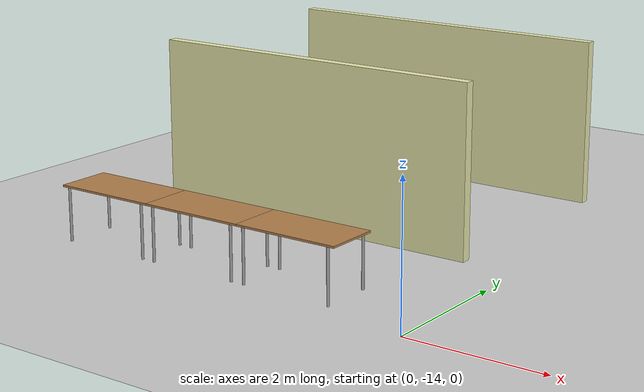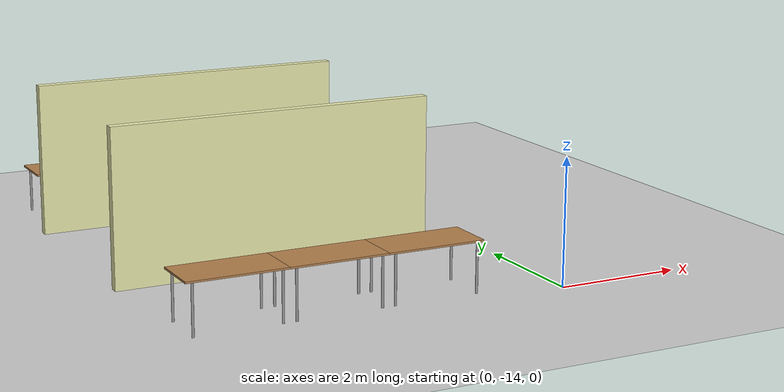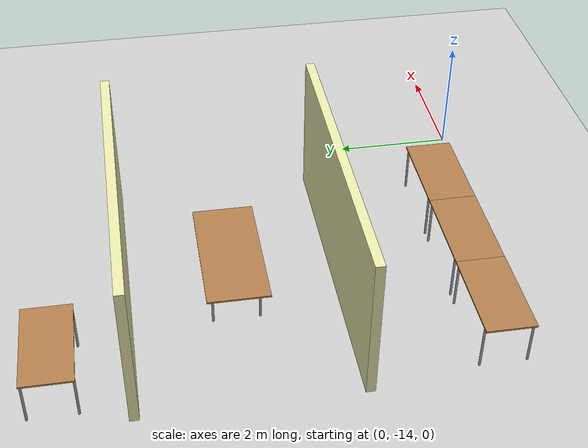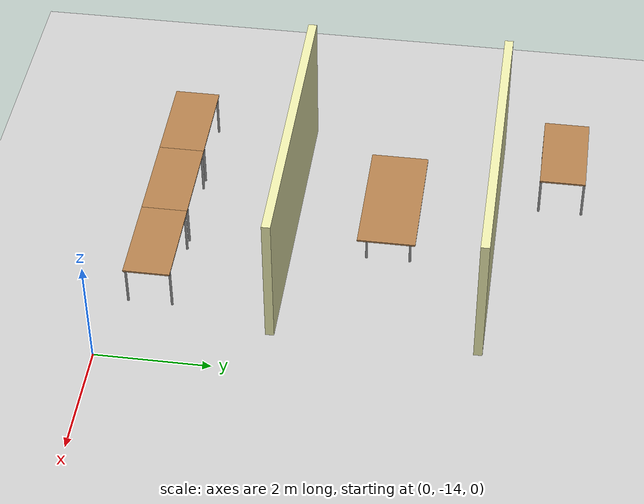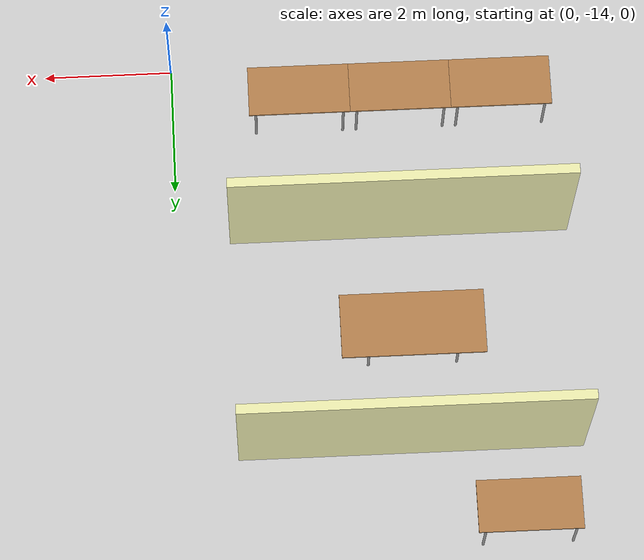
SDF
<sdf version="1.6">
 <world name="default">
  <model name="ground_plane">
   <static>1</static>
   <link name="link">
    <collision name="collision">
     <geometry><plane><normal>0 0 1</normal><size>100 100</size></plane></geometry>
     <surface><friction><ode><mu>100</mu><mu2>50</mu2></ode></friction></surface>
    </collision>
    <visual name="visual">
     <cast_shadows>0</cast_shadows>
     <geometry><plane><normal>0 0 1</normal><size>100 100</size></plane></geometry>
     <material>
      <script><uri>file://media/materials/scripts/gazebo.material</uri><name>Gazebo/Grey</name></script>
     </material>
    </visual>
   </link>
  </model>
  <model name="Building">
   <link name="Wall_53">
    <collision name="Wall_53_Collision">
     <geometry><box><size>5.25 0.15 2.5</size></box></geometry>
     <pose>0 0 1.25 0 -0 0</pose>
    </collision>
    <visual name="Wall_53_Visual">
     <pose>0 0 1.25 0 -0 0</pose>
     <geometry><box><size>5.25 0.15 2.5</size></box></geometry>
     <material>
      <script><uri>file://media/materials/scripts/gazebo.material</uri><name>Gazebo/Grey</name></script>
      <ambient>0.92 0.92 0.68 1</ambient>
     </material>
     <meta><layer>0</layer></meta>
    </visual>
    <pose>-3.45 -7.66361 0 0 -0 0</pose>
   </link>
   <link name="Wall_55">
    <collision name="Wall_55_Collision">
     <geometry><box><size>5.25 0.15 2.5</size></box></geometry>
     <pose>0 0 1.25 0 -0 0</pose>
    </collision>
    <visual name="Wall_55_Visual">
     <pose>0 0 1.25 0 -0 0</pose>
     <geometry><box><size>5.25 0.15 2.5</size></box></geometry>
     <material>
      <script><uri>file://media/materials/scripts/gazebo.material</uri><name>Gazebo/Grey</name></script>
      <ambient>0.92 0.92 0.68 1</ambient>
     </material>
     <meta><layer>0</layer></meta>
    </visual>
    <pose>-3.45 -11.1636 0 0 -0 0</pose>
   </link>
   <static>1</static>
  </model>
  <model name="tablealt_0_clone_30">
   <link name="link">
    <inertial>
     <mass>1</mass>
     <inertia><ixx>1</ixx><ixy>0</ixy><ixz>0</ixz><iyy>1</iyy><iyz>0</iyz><izz>1</izz></inertia>
    </inertial>
    <visual name="back_right_leg">
     <pose>-0.68 -0.38 0.4 0 -0 0</pose>
     <geometry><cylinder><radius>0.02</radius><length>0.8</length></cylinder></geometry>
     <material>
      <script><uri>file://media/materials/scripts/gazebo.material</uri><name>Gazebo/Grey</name></script>
      <shader type="pixel"><normal_map>__default__</normal_map></shader>
      <ambient>0.3 0.3 0.3 1</ambient>
      <diffuse>0.7 0.7 0.7 1</diffuse>
      <specular>0.01 0.01 0.01 1</specular>
      <emissive>0 0 0 1</emissive>
     </material>
    </visual>
    <visual name="back_left_leg">
     <pose>-0.68 0.38 0.4 0 -0 0</pose>
     <geometry><cylinder><radius>0.02</radius><length>0.8</length></cylinder></geometry>
     <material>
      <script><uri>file://media/materials/scripts/gazebo.material</uri><name>Gazebo/Grey</name></script>
      <shader type="pixel"><normal_map>__default__</normal_map></shader>
      <ambient>0.3 0.3 0.3 1</ambient>
      <diffuse>0.7 0.7 0.7 1</diffuse>
      <specular>0.01 0.01 0.01 1</specular>
      <emissive>0 0 0 1</emissive>
     </material>
    </visual>
    <visual name="visual1">
     <pose>0 0 0.8 0 -0 0</pose>
     <geometry><box><size>1.57 0.8 0.03</size></box></geometry>
     <material>
      <script><uri>file://media/materials/scripts/gazebo.material</uri><name>Gazebo/Wood</name></script>
      <shader type="pixel"><normal_map>__default__</normal_map></shader>
      <ambient>0.92 0.92 0.68 1</ambient>
      <diffuse>1 1 1 1</diffuse>
      <specular>0.2 0.2 0.2 1</specular>
      <emissive>0 0 0 1</emissive>
     </material>
    </visual>
    <visual name="front_left_leg">
     <pose>0.68 0.38 0.4 0 -0 0</pose>
     <geometry><cylinder><radius>0.02</radius><length>0.8</length></cylinder></geometry>
     <material>
      <script><uri>file://media/materials/scripts/gazebo.material</uri><name>Gazebo/Grey</name></script>
      <shader type="pixel"><normal_map>__default__</normal_map></shader>
      <ambient>0.3 0.3 0.3 1</ambient>
      <diffuse>0.7 0.7 0.7 1</diffuse>
      <specular>0.01 0.01 0.01 1</specular>
      <emissive>0 0 0 1</emissive>
     </material>
    </visual>
    <visual name="front_right_leg">
     <pose>0.68 -0.38 0.4 0 -0 0</pose>
     <geometry><cylinder><radius>0.02</radius><length>0.8</length></cylinder></geometry>
     <material>
      <script><uri>file://media/materials/scripts/gazebo.material</uri><name>Gazebo/Grey</name></script>
      <shader type="pixel"><normal_map>__default__</normal_map></shader>
      <ambient>0.3 0.3 0.3 1</ambient>
      <diffuse>0.7 0.7 0.7 1</diffuse>
      <specular>0.01 0.01 0.01 1</specular>
      <emissive>0 0 0 1</emissive>
     </material>
    </visual>
    <collision name="front_right_leg">
     <pose>0.68 -0.38 0.4 0 -0 0</pose>
     <geometry><cylinder><radius>0.02</radius><length>0.8</length></cylinder></geometry>
     <surface>
      <friction>
       <ode><mu>1</mu><mu2>1</mu2><fdir1>0 0 0</fdir1><slip1>0</slip1><slip2>0</slip2></ode>
       <torsional>
        <coefficient>1</coefficient>
        <patch_radius>0</patch_radius>
        <surface_radius>0</surface_radius>
        <use_patch_radius>1</use_patch_radius>
        <ode><slip>0</slip></ode>
       </torsional>
      </friction>
      <bounce><restitution_coefficient>0</restitution_coefficient><threshold>1e+06</threshold></bounce>
      <contact>
       <collide_without_contact>0</collide_without_contact>
       <collide_without_contact_bitmask>1</collide_without_contact_bitmask>
       <collide_bitmask>1</collide_bitmask>
       <ode>
        <soft_cfm>0</soft_cfm>
        <soft_erp>0.2</soft_erp>
        <kp>1e+13</kp>
        <kd>1</kd>
        <max_vel>0.01</max_vel>
        <min_depth>0</min_depth>
       </ode>
       <bullet>
        <split_impulse>1</split_impulse>
        <split_impulse_penetration_threshold>-0.01</split_impulse_penetration_threshold>
        <soft_cfm>0</soft_cfm>
        <soft_erp>0.2</soft_erp>
        <kp>1e+13</kp>
        <kd>1</kd>
       </bullet>
      </contact>
     </surface>
    </collision>
    <collision name="surface">
     <pose>0 0 0.8 0 -0 0</pose>
     <geometry><box><size>1.5 0.8 0.03</size></box></geometry>
     <surface>
      <friction>
       <ode><mu>0.6</mu><mu2>0.6</mu2><fdir1>0 0 0</fdir1><slip1>0</slip1><slip2>0</slip2></ode>
       <torsional>
        <coefficient>1</coefficient>
        <patch_radius>0</patch_radius>
        <surface_radius>0</surface_radius>
        <use_patch_radius>1</use_patch_radius>
        <ode><slip>0</slip></ode>
       </torsional>
      </friction>
      <bounce><restitution_coefficient>0</restitution_coefficient><threshold>1e+06</threshold></bounce>
      <contact>
       <collide_without_contact>0</collide_without_contact>
       <collide_without_contact_bitmask>1</collide_without_contact_bitmask>
       <collide_bitmask>1</collide_bitmask>
       <ode>
        <soft_cfm>0</soft_cfm>
        <soft_erp>0.2</soft_erp>
        <kp>1e+13</kp>
        <kd>1</kd>
        <max_vel>0.01</max_vel>
        <min_depth>0</min_depth>
       </ode>
       <bullet>
        <split_impulse>1</split_impulse>
        <split_impulse_penetration_threshold>-0.01</split_impulse_penetration_threshold>
        <soft_cfm>0</soft_cfm>
        <soft_erp>0.2</soft_erp>
        <kp>1e+13</kp>
        <kd>1</kd>
       </bullet>
      </contact>
     </surface>
    </collision>
    <collision name="front_left_leg">
     <pose>0.68 0.38 0.4 0 -0 0</pose>
     <geometry><cylinder><radius>0.02</radius><length>0.8</length></cylinder></geometry>
     <surface>
      <friction>
       <ode><mu>1</mu><mu2>1</mu2><fdir1>0 0 0</fdir1><slip1>0</slip1><slip2>0</slip2></ode>
       <torsional>
        <coefficient>1</coefficient>
        <patch_radius>0</patch_radius>
        <surface_radius>0</surface_radius>
        <use_patch_radius>1</use_patch_radius>
        <ode><slip>0</slip></ode>
       </torsional>
      </friction>
      <bounce><restitution_coefficient>0</restitution_coefficient><threshold>1e+06</threshold></bounce>
      <contact>
       <collide_without_contact>0</collide_without_contact>
       <collide_without_contact_bitmask>1</collide_without_contact_bitmask>
       <collide_bitmask>1</collide_bitmask>
       <ode>
        <soft_cfm>0</soft_cfm>
        <soft_erp>0.2</soft_erp>
        <kp>1e+13</kp>
        <kd>1</kd>
        <max_vel>0.01</max_vel>
        <min_depth>0</min_depth>
       </ode>
       <bullet>
        <split_impulse>1</split_impulse>
        <split_impulse_penetration_threshold>-0.01</split_impulse_penetration_threshold>
        <soft_cfm>0</soft_cfm>
        <soft_erp>0.2</soft_erp>
        <kp>1e+13</kp>
        <kd>1</kd>
       </bullet>
      </contact>
     </surface>
    </collision>
    <collision name="back_left_leg">
     <pose>-0.68 0.38 0.4 0 -0 0</pose>
     <geometry><cylinder><radius>0.02</radius><length>0.8</length></cylinder></geometry>
     <surface>
      <friction>
       <ode><mu>1</mu><mu2>1</mu2><fdir1>0 0 0</fdir1><slip1>0</slip1><slip2>0</slip2></ode>
       <torsional>
        <coefficient>1</coefficient>
        <patch_radius>0</patch_radius>
        <surface_radius>0</surface_radius>
        <use_patch_radius>1</use_patch_radius>
        <ode><slip>0</slip></ode>
       </torsional>
      </friction>
      <bounce><restitution_coefficient>0</restitution_coefficient><threshold>1e+06</threshold></bounce>
      <contact>
       <collide_without_contact>0</collide_without_contact>
       <collide_without_contact_bitmask>1</collide_without_contact_bitmask>
       <collide_bitmask>1</collide_bitmask>
       <ode>
        <soft_cfm>0</soft_cfm>
        <soft_erp>0.2</soft_erp>
        <kp>1e+13</kp>
        <kd>1</kd>
        <max_vel>0.01</max_vel>
        <min_depth>0</min_depth>
       </ode>
       <bullet>
        <split_impulse>1</split_impulse>
        <split_impulse_penetration_threshold>-0.01</split_impulse_penetration_threshold>
        <soft_cfm>0</soft_cfm>
        <soft_erp>0.2</soft_erp>
        <kp>1e+13</kp>
        <kd>1</kd>
       </bullet>
      </contact>
     </surface>
    </collision>
    <collision name="back_right_leg">
     <pose>-0.68 -0.38 0.4 0 -0 0</pose>
     <geometry><cylinder><radius>0.02</radius><length>0.8</length></cylinder></geometry>
     <surface>
      <friction>
       <ode><mu>1</mu><mu2>1</mu2><fdir1>0 0 0</fdir1><slip1>0</slip1><slip2>0</slip2></ode>
       <torsional>
        <coefficient>1</coefficient>
        <patch_radius>0</patch_radius>
        <surface_radius>0</surface_radius>
        <use_patch_radius>1</use_patch_radius>
        <ode><slip>0</slip></ode>
       </torsional>
      </friction>
      <bounce><restitution_coefficient>0</restitution_coefficient><threshold>1e+06</threshold></bounce>
      <contact>
       <collide_without_contact>0</collide_without_contact>
       <collide_without_contact_bitmask>1</collide_without_contact_bitmask>
       <collide_bitmask>1</collide_bitmask>
       <ode>
        <soft_cfm>0</soft_cfm>
        <soft_erp>0.2</soft_erp>
        <kp>1e+13</kp>
        <kd>1</kd>
        <max_vel>0.01</max_vel>
        <min_depth>0</min_depth>
       </ode>
       <bullet>
        <split_impulse>1</split_impulse>
        <split_impulse_penetration_threshold>-0.01</split_impulse_penetration_threshold>
        <soft_cfm>0</soft_cfm>
        <soft_erp>0.2</soft_erp>
        <kp>1e+13</kp>
        <kd>1</kd>
       </bullet>
      </contact>
     </surface>
    </collision>
   </link>
   <static>1</static>
   <pose>-5.13 -6.5 0 0 -0 0</pose>
  </model>
  <model name="tablealt_0_clone_36">
   <link name="link">
    <inertial>
     <mass>1</mass>
     <inertia><ixx>1</ixx><ixy>0</ixy><ixz>0</ixz><iyy>1</iyy><iyz>0</iyz><izz>1</izz></inertia>
    </inertial>
    <visual name="back_right_leg">
     <pose>-0.68 -0.38 0.4 0 -0 0</pose>
     <geometry><cylinder><radius>0.02</radius><length>0.8</length></cylinder></geometry>
     <material>
      <script><uri>file://media/materials/scripts/gazebo.material</uri><name>Gazebo/Grey</name></script>
      <shader type="pixel"><normal_map>__default__</normal_map></shader>
      <ambient>0.3 0.3 0.3 1</ambient>
      <diffuse>0.7 0.7 0.7 1</diffuse>
      <specular>0.01 0.01 0.01 1</specular>
      <emissive>0 0 0 1</emissive>
     </material>
    </visual>
    <visual name="back_left_leg">
     <pose>-0.68 0.38 0.4 0 -0 0</pose>
     <geometry><cylinder><radius>0.02</radius><length>0.8</length></cylinder></geometry>
     <material>
      <script><uri>file://media/materials/scripts/gazebo.material</uri><name>Gazebo/Grey</name></script>
      <shader type="pixel"><normal_map>__default__</normal_map></shader>
      <ambient>0.3 0.3 0.3 1</ambient>
      <diffuse>0.7 0.7 0.7 1</diffuse>
      <specular>0.01 0.01 0.01 1</specular>
      <emissive>0 0 0 1</emissive>
     </material>
    </visual>
    <visual name="visual1">
     <pose>0 0 0.8 0 -0 0</pose>
     <geometry><box><size>1.57 0.8 0.03</size></box></geometry>
     <material>
      <script><uri>file://media/materials/scripts/gazebo.material</uri><name>Gazebo/Wood</name></script>
      <shader type="pixel"><normal_map>__default__</normal_map></shader>
      <ambient>0.92 0.92 0.68 1</ambient>
      <diffuse>1 1 1 1</diffuse>
      <specular>0.2 0.2 0.2 1</specular>
      <emissive>0 0 0 1</emissive>
     </material>
    </visual>
    <visual name="front_left_leg">
     <pose>0.68 0.38 0.4 0 -0 0</pose>
     <geometry><cylinder><radius>0.02</radius><length>0.8</length></cylinder></geometry>
     <material>
      <script><uri>file://media/materials/scripts/gazebo.material</uri><name>Gazebo/Grey</name></script>
      <shader type="pixel"><normal_map>__default__</normal_map></shader>
      <ambient>0.3 0.3 0.3 1</ambient>
      <diffuse>0.7 0.7 0.7 1</diffuse>
      <specular>0.01 0.01 0.01 1</specular>
      <emissive>0 0 0 1</emissive>
     </material>
    </visual>
    <visual name="front_right_leg">
     <pose>0.68 -0.38 0.4 0 -0 0</pose>
     <geometry><cylinder><radius>0.02</radius><length>0.8</length></cylinder></geometry>
     <material>
      <script><uri>file://media/materials/scripts/gazebo.material</uri><name>Gazebo/Grey</name></script>
      <shader type="pixel"><normal_map>__default__</normal_map></shader>
      <ambient>0.3 0.3 0.3 1</ambient>
      <diffuse>0.7 0.7 0.7 1</diffuse>
      <specular>0.01 0.01 0.01 1</specular>
      <emissive>0 0 0 1</emissive>
     </material>
    </visual>
    <collision name="front_right_leg">
     <pose>0.68 -0.38 0.4 0 -0 0</pose>
     <geometry><cylinder><radius>0.02</radius><length>0.8</length></cylinder></geometry>
     <surface>
      <friction>
       <ode><mu>1</mu><mu2>1</mu2><fdir1>0 0 0</fdir1><slip1>0</slip1><slip2>0</slip2></ode>
       <torsional>
        <coefficient>1</coefficient>
        <patch_radius>0</patch_radius>
        <surface_radius>0</surface_radius>
        <use_patch_radius>1</use_patch_radius>
        <ode><slip>0</slip></ode>
       </torsional>
      </friction>
      <bounce><restitution_coefficient>0</restitution_coefficient><threshold>1e+06</threshold></bounce>
      <contact>
       <collide_without_contact>0</collide_without_contact>
       <collide_without_contact_bitmask>1</collide_without_contact_bitmask>
       <collide_bitmask>1</collide_bitmask>
       <ode>
        <soft_cfm>0</soft_cfm>
        <soft_erp>0.2</soft_erp>
        <kp>1e+13</kp>
        <kd>1</kd>
        <max_vel>0.01</max_vel>
        <min_depth>0</min_depth>
       </ode>
       <bullet>
        <split_impulse>1</split_impulse>
        <split_impulse_penetration_threshold>-0.01</split_impulse_penetration_threshold>
        <soft_cfm>0</soft_cfm>
        <soft_erp>0.2</soft_erp>
        <kp>1e+13</kp>
        <kd>1</kd>
       </bullet>
      </contact>
     </surface>
    </collision>
    <collision name="surface">
     <pose>0 0 0.8 0 -0 0</pose>
     <geometry><box><size>1.5 0.8 0.03</size></box></geometry>
     <surface>
      <friction>
       <ode><mu>0.6</mu><mu2>0.6</mu2><fdir1>0 0 0</fdir1><slip1>0</slip1><slip2>0</slip2></ode>
       <torsional>
        <coefficient>1</coefficient>
        <patch_radius>0</patch_radius>
        <surface_radius>0</surface_radius>
        <use_patch_radius>1</use_patch_radius>
        <ode><slip>0</slip></ode>
       </torsional>
      </friction>
      <bounce><restitution_coefficient>0</restitution_coefficient><threshold>1e+06</threshold></bounce>
      <contact>
       <collide_without_contact>0</collide_without_contact>
       <collide_without_contact_bitmask>1</collide_without_contact_bitmask>
       <collide_bitmask>1</collide_bitmask>
       <ode>
        <soft_cfm>0</soft_cfm>
        <soft_erp>0.2</soft_erp>
        <kp>1e+13</kp>
        <kd>1</kd>
        <max_vel>0.01</max_vel>
        <min_depth>0</min_depth>
       </ode>
       <bullet>
        <split_impulse>1</split_impulse>
        <split_impulse_penetration_threshold>-0.01</split_impulse_penetration_threshold>
        <soft_cfm>0</soft_cfm>
        <soft_erp>0.2</soft_erp>
        <kp>1e+13</kp>
        <kd>1</kd>
       </bullet>
      </contact>
     </surface>
    </collision>
    <collision name="front_left_leg">
     <pose>0.68 0.38 0.4 0 -0 0</pose>
     <geometry><cylinder><radius>0.02</radius><length>0.8</length></cylinder></geometry>
     <surface>
      <friction>
       <ode><mu>1</mu><mu2>1</mu2><fdir1>0 0 0</fdir1><slip1>0</slip1><slip2>0</slip2></ode>
       <torsional>
        <coefficient>1</coefficient>
        <patch_radius>0</patch_radius>
        <surface_radius>0</surface_radius>
        <use_patch_radius>1</use_patch_radius>
        <ode><slip>0</slip></ode>
       </torsional>
      </friction>
      <bounce><restitution_coefficient>0</restitution_coefficient><threshold>1e+06</threshold></bounce>
      <contact>
       <collide_without_contact>0</collide_without_contact>
       <collide_without_contact_bitmask>1</collide_without_contact_bitmask>
       <collide_bitmask>1</collide_bitmask>
       <ode>
        <soft_cfm>0</soft_cfm>
        <soft_erp>0.2</soft_erp>
        <kp>1e+13</kp>
        <kd>1</kd>
        <max_vel>0.01</max_vel>
        <min_depth>0</min_depth>
       </ode>
       <bullet>
        <split_impulse>1</split_impulse>
        <split_impulse_penetration_threshold>-0.01</split_impulse_penetration_threshold>
        <soft_cfm>0</soft_cfm>
        <soft_erp>0.2</soft_erp>
        <kp>1e+13</kp>
        <kd>1</kd>
       </bullet>
      </contact>
     </surface>
    </collision>
    <collision name="back_left_leg">
     <pose>-0.68 0.38 0.4 0 -0 0</pose>
     <geometry><cylinder><radius>0.02</radius><length>0.8</length></cylinder></geometry>
     <surface>
      <friction>
       <ode><mu>1</mu><mu2>1</mu2><fdir1>0 0 0</fdir1><slip1>0</slip1><slip2>0</slip2></ode>
       <torsional>
        <coefficient>1</coefficient>
        <patch_radius>0</patch_radius>
        <surface_radius>0</surface_radius>
        <use_patch_radius>1</use_patch_radius>
        <ode><slip>0</slip></ode>
       </torsional>
      </friction>
      <bounce><restitution_coefficient>0</restitution_coefficient><threshold>1e+06</threshold></bounce>
      <contact>
       <collide_without_contact>0</collide_without_contact>
       <collide_without_contact_bitmask>1</collide_without_contact_bitmask>
       <collide_bitmask>1</collide_bitmask>
       <ode>
        <soft_cfm>0</soft_cfm>
        <soft_erp>0.2</soft_erp>
        <kp>1e+13</kp>
        <kd>1</kd>
        <max_vel>0.01</max_vel>
        <min_depth>0</min_depth>
       </ode>
       <bullet>
        <split_impulse>1</split_impulse>
        <split_impulse_penetration_threshold>-0.01</split_impulse_penetration_threshold>
        <soft_cfm>0</soft_cfm>
        <soft_erp>0.2</soft_erp>
        <kp>1e+13</kp>
        <kd>1</kd>
       </bullet>
      </contact>
     </surface>
    </collision>
    <collision name="back_right_leg">
     <pose>-0.68 -0.38 0.4 0 -0 0</pose>
     <geometry><cylinder><radius>0.02</radius><length>0.8</length></cylinder></geometry>
     <surface>
      <friction>
       <ode><mu>1</mu><mu2>1</mu2><fdir1>0 0 0</fdir1><slip1>0</slip1><slip2>0</slip2></ode>
       <torsional>
        <coefficient>1</coefficient>
        <patch_radius>0</patch_radius>
        <surface_radius>0</surface_radius>
        <use_patch_radius>1</use_patch_radius>
        <ode><slip>0</slip></ode>
       </torsional>
      </friction>
      <bounce><restitution_coefficient>0</restitution_coefficient><threshold>1e+06</threshold></bounce>
      <contact>
       <collide_without_contact>0</collide_without_contact>
       <collide_without_contact_bitmask>1</collide_without_contact_bitmask>
       <collide_bitmask>1</collide_bitmask>
       <ode>
        <soft_cfm>0</soft_cfm>
        <soft_erp>0.2</soft_erp>
        <kp>1e+13</kp>
        <kd>1</kd>
        <max_vel>0.01</max_vel>
        <min_depth>0</min_depth>
       </ode>
       <bullet>
        <split_impulse>1</split_impulse>
        <split_impulse_penetration_threshold>-0.01</split_impulse_penetration_threshold>
        <soft_cfm>0</soft_cfm>
        <soft_erp>0.2</soft_erp>
        <kp>1e+13</kp>
        <kd>1</kd>
       </bullet>
      </contact>
     </surface>
    </collision>
   </link>
   <static>1</static>
   <pose>-5.13 -13.3 0 0 -0 0</pose>
  </model>
  <model name="tablealt_0_clone_37">
   <link name="link">
    <inertial>
     <mass>1</mass>
     <inertia><ixx>1</ixx><ixy>0</ixy><ixz>0</ixz><iyy>1</iyy><iyz>0</iyz><izz>1</izz></inertia>
    </inertial>
    <visual name="back_right_leg">
     <pose>-0.68 -0.38 0.4 0 -0 0</pose>
     <geometry><cylinder><radius>0.02</radius><length>0.8</length></cylinder></geometry>
     <material>
      <script><uri>file://media/materials/scripts/gazebo.material</uri><name>Gazebo/Grey</name></script>
      <shader type="pixel"><normal_map>__default__</normal_map></shader>
      <ambient>0.3 0.3 0.3 1</ambient>
      <diffuse>0.7 0.7 0.7 1</diffuse>
      <specular>0.01 0.01 0.01 1</specular>
      <emissive>0 0 0 1</emissive>
     </material>
    </visual>
    <visual name="back_left_leg">
     <pose>-0.68 0.38 0.4 0 -0 0</pose>
     <geometry><cylinder><radius>0.02</radius><length>0.8</length></cylinder></geometry>
     <material>
      <script><uri>file://media/materials/scripts/gazebo.material</uri><name>Gazebo/Grey</name></script>
      <shader type="pixel"><normal_map>__default__</normal_map></shader>
      <ambient>0.3 0.3 0.3 1</ambient>
      <diffuse>0.7 0.7 0.7 1</diffuse>
      <specular>0.01 0.01 0.01 1</specular>
      <emissive>0 0 0 1</emissive>
     </material>
    </visual>
    <visual name="visual1">
     <pose>0 0 0.8 0 -0 0</pose>
     <geometry><box><size>1.57 0.8 0.03</size></box></geometry>
     <material>
      <script><uri>file://media/materials/scripts/gazebo.material</uri><name>Gazebo/Wood</name></script>
      <shader type="pixel"><normal_map>__default__</normal_map></shader>
      <ambient>0.92 0.92 0.68 1</ambient>
      <diffuse>1 1 1 1</diffuse>
      <specular>0.2 0.2 0.2 1</specular>
      <emissive>0 0 0 1</emissive>
     </material>
    </visual>
    <visual name="front_left_leg">
     <pose>0.68 0.38 0.4 0 -0 0</pose>
     <geometry><cylinder><radius>0.02</radius><length>0.8</length></cylinder></geometry>
     <material>
      <script><uri>file://media/materials/scripts/gazebo.material</uri><name>Gazebo/Grey</name></script>
      <shader type="pixel"><normal_map>__default__</normal_map></shader>
      <ambient>0.3 0.3 0.3 1</ambient>
      <diffuse>0.7 0.7 0.7 1</diffuse>
      <specular>0.01 0.01 0.01 1</specular>
      <emissive>0 0 0 1</emissive>
     </material>
    </visual>
    <visual name="front_right_leg">
     <pose>0.68 -0.38 0.4 0 -0 0</pose>
     <geometry><cylinder><radius>0.02</radius><length>0.8</length></cylinder></geometry>
     <material>
      <script><uri>file://media/materials/scripts/gazebo.material</uri><name>Gazebo/Grey</name></script>
      <shader type="pixel"><normal_map>__default__</normal_map></shader>
      <ambient>0.3 0.3 0.3 1</ambient>
      <diffuse>0.7 0.7 0.7 1</diffuse>
      <specular>0.01 0.01 0.01 1</specular>
      <emissive>0 0 0 1</emissive>
     </material>
    </visual>
    <collision name="front_right_leg">
     <pose>0.68 -0.38 0.4 0 -0 0</pose>
     <geometry><cylinder><radius>0.02</radius><length>0.8</length></cylinder></geometry>
     <surface>
      <friction>
       <ode><mu>1</mu><mu2>1</mu2><fdir1>0 0 0</fdir1><slip1>0</slip1><slip2>0</slip2></ode>
       <torsional>
        <coefficient>1</coefficient>
        <patch_radius>0</patch_radius>
        <surface_radius>0</surface_radius>
        <use_patch_radius>1</use_patch_radius>
        <ode><slip>0</slip></ode>
       </torsional>
      </friction>
      <bounce><restitution_coefficient>0</restitution_coefficient><threshold>1e+06</threshold></bounce>
      <contact>
       <collide_without_contact>0</collide_without_contact>
       <collide_without_contact_bitmask>1</collide_without_contact_bitmask>
       <collide_bitmask>1</collide_bitmask>
       <ode>
        <soft_cfm>0</soft_cfm>
        <soft_erp>0.2</soft_erp>
        <kp>1e+13</kp>
        <kd>1</kd>
        <max_vel>0.01</max_vel>
        <min_depth>0</min_depth>
       </ode>
       <bullet>
        <split_impulse>1</split_impulse>
        <split_impulse_penetration_threshold>-0.01</split_impulse_penetration_threshold>
        <soft_cfm>0</soft_cfm>
        <soft_erp>0.2</soft_erp>
        <kp>1e+13</kp>
        <kd>1</kd>
       </bullet>
      </contact>
     </surface>
    </collision>
    <collision name="surface">
     <pose>0 0 0.8 0 -0 0</pose>
     <geometry><box><size>1.5 0.8 0.03</size></box></geometry>
     <surface>
      <friction>
       <ode><mu>0.6</mu><mu2>0.6</mu2><fdir1>0 0 0</fdir1><slip1>0</slip1><slip2>0</slip2></ode>
       <torsional>
        <coefficient>1</coefficient>
        <patch_radius>0</patch_radius>
        <surface_radius>0</surface_radius>
        <use_patch_radius>1</use_patch_radius>
        <ode><slip>0</slip></ode>
       </torsional>
      </friction>
      <bounce><restitution_coefficient>0</restitution_coefficient><threshold>1e+06</threshold></bounce>
      <contact>
       <collide_without_contact>0</collide_without_contact>
       <collide_without_contact_bitmask>1</collide_without_contact_bitmask>
       <collide_bitmask>1</collide_bitmask>
       <ode>
        <soft_cfm>0</soft_cfm>
        <soft_erp>0.2</soft_erp>
        <kp>1e+13</kp>
        <kd>1</kd>
        <max_vel>0.01</max_vel>
        <min_depth>0</min_depth>
       </ode>
       <bullet>
        <split_impulse>1</split_impulse>
        <split_impulse_penetration_threshold>-0.01</split_impulse_penetration_threshold>
        <soft_cfm>0</soft_cfm>
        <soft_erp>0.2</soft_erp>
        <kp>1e+13</kp>
        <kd>1</kd>
       </bullet>
      </contact>
     </surface>
    </collision>
    <collision name="front_left_leg">
     <pose>0.68 0.38 0.4 0 -0 0</pose>
     <geometry><cylinder><radius>0.02</radius><length>0.8</length></cylinder></geometry>
     <surface>
      <friction>
       <ode><mu>1</mu><mu2>1</mu2><fdir1>0 0 0</fdir1><slip1>0</slip1><slip2>0</slip2></ode>
       <torsional>
        <coefficient>1</coefficient>
        <patch_radius>0</patch_radius>
        <surface_radius>0</surface_radius>
        <use_patch_radius>1</use_patch_radius>
        <ode><slip>0</slip></ode>
       </torsional>
      </friction>
      <bounce><restitution_coefficient>0</restitution_coefficient><threshold>1e+06</threshold></bounce>
      <contact>
       <collide_without_contact>0</collide_without_contact>
       <collide_without_contact_bitmask>1</collide_without_contact_bitmask>
       <collide_bitmask>1</collide_bitmask>
       <ode>
        <soft_cfm>0</soft_cfm>
        <soft_erp>0.2</soft_erp>
        <kp>1e+13</kp>
        <kd>1</kd>
        <max_vel>0.01</max_vel>
        <min_depth>0</min_depth>
       </ode>
       <bullet>
        <split_impulse>1</split_impulse>
        <split_impulse_penetration_threshold>-0.01</split_impulse_penetration_threshold>
        <soft_cfm>0</soft_cfm>
        <soft_erp>0.2</soft_erp>
        <kp>1e+13</kp>
        <kd>1</kd>
       </bullet>
      </contact>
     </surface>
    </collision>
    <collision name="back_left_leg">
     <pose>-0.68 0.38 0.4 0 -0 0</pose>
     <geometry><cylinder><radius>0.02</radius><length>0.8</length></cylinder></geometry>
     <surface>
      <friction>
       <ode><mu>1</mu><mu2>1</mu2><fdir1>0 0 0</fdir1><slip1>0</slip1><slip2>0</slip2></ode>
       <torsional>
        <coefficient>1</coefficient>
        <patch_radius>0</patch_radius>
        <surface_radius>0</surface_radius>
        <use_patch_radius>1</use_patch_radius>
        <ode><slip>0</slip></ode>
       </torsional>
      </friction>
      <bounce><restitution_coefficient>0</restitution_coefficient><threshold>1e+06</threshold></bounce>
      <contact>
       <collide_without_contact>0</collide_without_contact>
       <collide_without_contact_bitmask>1</collide_without_contact_bitmask>
       <collide_bitmask>1</collide_bitmask>
       <ode>
        <soft_cfm>0</soft_cfm>
        <soft_erp>0.2</soft_erp>
        <kp>1e+13</kp>
        <kd>1</kd>
        <max_vel>0.01</max_vel>
        <min_depth>0</min_depth>
       </ode>
       <bullet>
        <split_impulse>1</split_impulse>
        <split_impulse_penetration_threshold>-0.01</split_impulse_penetration_threshold>
        <soft_cfm>0</soft_cfm>
        <soft_erp>0.2</soft_erp>
        <kp>1e+13</kp>
        <kd>1</kd>
       </bullet>
      </contact>
     </surface>
    </collision>
    <collision name="back_right_leg">
     <pose>-0.68 -0.38 0.4 0 -0 0</pose>
     <geometry><cylinder><radius>0.02</radius><length>0.8</length></cylinder></geometry>
     <surface>
      <friction>
       <ode><mu>1</mu><mu2>1</mu2><fdir1>0 0 0</fdir1><slip1>0</slip1><slip2>0</slip2></ode>
       <torsional>
        <coefficient>1</coefficient>
        <patch_radius>0</patch_radius>
        <surface_radius>0</surface_radius>
        <use_patch_radius>1</use_patch_radius>
        <ode><slip>0</slip></ode>
       </torsional>
      </friction>
      <bounce><restitution_coefficient>0</restitution_coefficient><threshold>1e+06</threshold></bounce>
      <contact>
       <collide_without_contact>0</collide_without_contact>
       <collide_without_contact_bitmask>1</collide_without_contact_bitmask>
       <collide_bitmask>1</collide_bitmask>
       <ode>
        <soft_cfm>0</soft_cfm>
        <soft_erp>0.2</soft_erp>
        <kp>1e+13</kp>
        <kd>1</kd>
        <max_vel>0.01</max_vel>
        <min_depth>0</min_depth>
       </ode>
       <bullet>
        <split_impulse>1</split_impulse>
        <split_impulse_penetration_threshold>-0.01</split_impulse_penetration_threshold>
        <soft_cfm>0</soft_cfm>
        <soft_erp>0.2</soft_erp>
        <kp>1e+13</kp>
        <kd>1</kd>
       </bullet>
      </contact>
     </surface>
    </collision>
   </link>
   <static>1</static>
   <pose>-3.56 -13.3 0 0 -0 0</pose>
  </model>
  <model name="tablealt_0_clone_38">
   <link name="link">
    <inertial>
     <mass>1</mass>
     <inertia><ixx>1</ixx><ixy>0</ixy><ixz>0</ixz><iyy>1</iyy><iyz>0</iyz><izz>1</izz></inertia>
    </inertial>
    <visual name="back_right_leg">
     <pose>-0.68 -0.38 0.4 0 -0 0</pose>
     <geometry><cylinder><radius>0.02</radius><length>0.8</length></cylinder></geometry>
     <material>
      <script><uri>file://media/materials/scripts/gazebo.material</uri><name>Gazebo/Grey</name></script>
      <shader type="pixel"><normal_map>__default__</normal_map></shader>
      <ambient>0.3 0.3 0.3 1</ambient>
      <diffuse>0.7 0.7 0.7 1</diffuse>
      <specular>0.01 0.01 0.01 1</specular>
      <emissive>0 0 0 1</emissive>
     </material>
    </visual>
    <visual name="back_left_leg">
     <pose>-0.68 0.38 0.4 0 -0 0</pose>
     <geometry><cylinder><radius>0.02</radius><length>0.8</length></cylinder></geometry>
     <material>
      <script><uri>file://media/materials/scripts/gazebo.material</uri><name>Gazebo/Grey</name></script>
      <shader type="pixel"><normal_map>__default__</normal_map></shader>
      <ambient>0.3 0.3 0.3 1</ambient>
      <diffuse>0.7 0.7 0.7 1</diffuse>
      <specular>0.01 0.01 0.01 1</specular>
      <emissive>0 0 0 1</emissive>
     </material>
    </visual>
    <visual name="visual1">
     <pose>0 0 0.8 0 -0 0</pose>
     <geometry><box><size>1.57 0.8 0.03</size></box></geometry>
     <material>
      <script><uri>file://media/materials/scripts/gazebo.material</uri><name>Gazebo/Wood</name></script>
      <shader type="pixel"><normal_map>__default__</normal_map></shader>
      <ambient>0.92 0.92 0.68 1</ambient>
      <diffuse>1 1 1 1</diffuse>
      <specular>0.2 0.2 0.2 1</specular>
      <emissive>0 0 0 1</emissive>
     </material>
    </visual>
    <visual name="front_left_leg">
     <pose>0.68 0.38 0.4 0 -0 0</pose>
     <geometry><cylinder><radius>0.02</radius><length>0.8</length></cylinder></geometry>
     <material>
      <script><uri>file://media/materials/scripts/gazebo.material</uri><name>Gazebo/Grey</name></script>
      <shader type="pixel"><normal_map>__default__</normal_map></shader>
      <ambient>0.3 0.3 0.3 1</ambient>
      <diffuse>0.7 0.7 0.7 1</diffuse>
      <specular>0.01 0.01 0.01 1</specular>
      <emissive>0 0 0 1</emissive>
     </material>
    </visual>
    <visual name="front_right_leg">
     <pose>0.68 -0.38 0.4 0 -0 0</pose>
     <geometry><cylinder><radius>0.02</radius><length>0.8</length></cylinder></geometry>
     <material>
      <script><uri>file://media/materials/scripts/gazebo.material</uri><name>Gazebo/Grey</name></script>
      <shader type="pixel"><normal_map>__default__</normal_map></shader>
      <ambient>0.3 0.3 0.3 1</ambient>
      <diffuse>0.7 0.7 0.7 1</diffuse>
      <specular>0.01 0.01 0.01 1</specular>
      <emissive>0 0 0 1</emissive>
     </material>
    </visual>
    <collision name="front_right_leg">
     <pose>0.68 -0.38 0.4 0 -0 0</pose>
     <geometry><cylinder><radius>0.02</radius><length>0.8</length></cylinder></geometry>
     <surface>
      <friction>
       <ode><mu>1</mu><mu2>1</mu2><fdir1>0 0 0</fdir1><slip1>0</slip1><slip2>0</slip2></ode>
       <torsional>
        <coefficient>1</coefficient>
        <patch_radius>0</patch_radius>
        <surface_radius>0</surface_radius>
        <use_patch_radius>1</use_patch_radius>
        <ode><slip>0</slip></ode>
       </torsional>
      </friction>
      <bounce><restitution_coefficient>0</restitution_coefficient><threshold>1e+06</threshold></bounce>
      <contact>
       <collide_without_contact>0</collide_without_contact>
       <collide_without_contact_bitmask>1</collide_without_contact_bitmask>
       <collide_bitmask>1</collide_bitmask>
       <ode>
        <soft_cfm>0</soft_cfm>
        <soft_erp>0.2</soft_erp>
        <kp>1e+13</kp>
        <kd>1</kd>
        <max_vel>0.01</max_vel>
        <min_depth>0</min_depth>
       </ode>
       <bullet>
        <split_impulse>1</split_impulse>
        <split_impulse_penetration_threshold>-0.01</split_impulse_penetration_threshold>
        <soft_cfm>0</soft_cfm>
        <soft_erp>0.2</soft_erp>
        <kp>1e+13</kp>
        <kd>1</kd>
       </bullet>
      </contact>
     </surface>
    </collision>
    <collision name="surface">
     <pose>0 0 0.8 0 -0 0</pose>
     <geometry><box><size>1.5 0.8 0.03</size></box></geometry>
     <surface>
      <friction>
       <ode><mu>0.6</mu><mu2>0.6</mu2><fdir1>0 0 0</fdir1><slip1>0</slip1><slip2>0</slip2></ode>
       <torsional>
        <coefficient>1</coefficient>
        <patch_radius>0</patch_radius>
        <surface_radius>0</surface_radius>
        <use_patch_radius>1</use_patch_radius>
        <ode><slip>0</slip></ode>
       </torsional>
      </friction>
      <bounce><restitution_coefficient>0</restitution_coefficient><threshold>1e+06</threshold></bounce>
      <contact>
       <collide_without_contact>0</collide_without_contact>
       <collide_without_contact_bitmask>1</collide_without_contact_bitmask>
       <collide_bitmask>1</collide_bitmask>
       <ode>
        <soft_cfm>0</soft_cfm>
        <soft_erp>0.2</soft_erp>
        <kp>1e+13</kp>
        <kd>1</kd>
        <max_vel>0.01</max_vel>
        <min_depth>0</min_depth>
       </ode>
       <bullet>
        <split_impulse>1</split_impulse>
        <split_impulse_penetration_threshold>-0.01</split_impulse_penetration_threshold>
        <soft_cfm>0</soft_cfm>
        <soft_erp>0.2</soft_erp>
        <kp>1e+13</kp>
        <kd>1</kd>
       </bullet>
      </contact>
     </surface>
    </collision>
    <collision name="front_left_leg">
     <pose>0.68 0.38 0.4 0 -0 0</pose>
     <geometry><cylinder><radius>0.02</radius><length>0.8</length></cylinder></geometry>
     <surface>
      <friction>
       <ode><mu>1</mu><mu2>1</mu2><fdir1>0 0 0</fdir1><slip1>0</slip1><slip2>0</slip2></ode>
       <torsional>
        <coefficient>1</coefficient>
        <patch_radius>0</patch_radius>
        <surface_radius>0</surface_radius>
        <use_patch_radius>1</use_patch_radius>
        <ode><slip>0</slip></ode>
       </torsional>
      </friction>
      <bounce><restitution_coefficient>0</restitution_coefficient><threshold>1e+06</threshold></bounce>
      <contact>
       <collide_without_contact>0</collide_without_contact>
       <collide_without_contact_bitmask>1</collide_without_contact_bitmask>
       <collide_bitmask>1</collide_bitmask>
       <ode>
        <soft_cfm>0</soft_cfm>
        <soft_erp>0.2</soft_erp>
        <kp>1e+13</kp>
        <kd>1</kd>
        <max_vel>0.01</max_vel>
        <min_depth>0</min_depth>
       </ode>
       <bullet>
        <split_impulse>1</split_impulse>
        <split_impulse_penetration_threshold>-0.01</split_impulse_penetration_threshold>
        <soft_cfm>0</soft_cfm>
        <soft_erp>0.2</soft_erp>
        <kp>1e+13</kp>
        <kd>1</kd>
       </bullet>
      </contact>
     </surface>
    </collision>
    <collision name="back_left_leg">
     <pose>-0.68 0.38 0.4 0 -0 0</pose>
     <geometry><cylinder><radius>0.02</radius><length>0.8</length></cylinder></geometry>
     <surface>
      <friction>
       <ode><mu>1</mu><mu2>1</mu2><fdir1>0 0 0</fdir1><slip1>0</slip1><slip2>0</slip2></ode>
       <torsional>
        <coefficient>1</coefficient>
        <patch_radius>0</patch_radius>
        <surface_radius>0</surface_radius>
        <use_patch_radius>1</use_patch_radius>
        <ode><slip>0</slip></ode>
       </torsional>
      </friction>
      <bounce><restitution_coefficient>0</restitution_coefficient><threshold>1e+06</threshold></bounce>
      <contact>
       <collide_without_contact>0</collide_without_contact>
       <collide_without_contact_bitmask>1</collide_without_contact_bitmask>
       <collide_bitmask>1</collide_bitmask>
       <ode>
        <soft_cfm>0</soft_cfm>
        <soft_erp>0.2</soft_erp>
        <kp>1e+13</kp>
        <kd>1</kd>
        <max_vel>0.01</max_vel>
        <min_depth>0</min_depth>
       </ode>
       <bullet>
        <split_impulse>1</split_impulse>
        <split_impulse_penetration_threshold>-0.01</split_impulse_penetration_threshold>
        <soft_cfm>0</soft_cfm>
        <soft_erp>0.2</soft_erp>
        <kp>1e+13</kp>
        <kd>1</kd>
       </bullet>
      </contact>
     </surface>
    </collision>
    <collision name="back_right_leg">
     <pose>-0.68 -0.38 0.4 0 -0 0</pose>
     <geometry><cylinder><radius>0.02</radius><length>0.8</length></cylinder></geometry>
     <surface>
      <friction>
       <ode><mu>1</mu><mu2>1</mu2><fdir1>0 0 0</fdir1><slip1>0</slip1><slip2>0</slip2></ode>
       <torsional>
        <coefficient>1</coefficient>
        <patch_radius>0</patch_radius>
        <surface_radius>0</surface_radius>
        <use_patch_radius>1</use_patch_radius>
        <ode><slip>0</slip></ode>
       </torsional>
      </friction>
      <bounce><restitution_coefficient>0</restitution_coefficient><threshold>1e+06</threshold></bounce>
      <contact>
       <collide_without_contact>0</collide_without_contact>
       <collide_without_contact_bitmask>1</collide_without_contact_bitmask>
       <collide_bitmask>1</collide_bitmask>
       <ode>
        <soft_cfm>0</soft_cfm>
        <soft_erp>0.2</soft_erp>
        <kp>1e+13</kp>
        <kd>1</kd>
        <max_vel>0.01</max_vel>
        <min_depth>0</min_depth>
       </ode>
       <bullet>
        <split_impulse>1</split_impulse>
        <split_impulse_penetration_threshold>-0.01</split_impulse_penetration_threshold>
        <soft_cfm>0</soft_cfm>
        <soft_erp>0.2</soft_erp>
        <kp>1e+13</kp>
        <kd>1</kd>
       </bullet>
      </contact>
     </surface>
    </collision>
   </link>
   <static>1</static>
   <pose>-1.99 -13.3 0 0 -0 0</pose>
  </model>
  <model name="tablealt_big_clone">
   <link name="link">
    <inertial>
     <mass>1</mass>
     <inertia><ixx>1</ixx><ixy>0</ixy><ixz>0</ixz><iyy>1</iyy><iyz>0</iyz><izz>1</izz></inertia>
    </inertial>
    <visual name="back_right_leg">
     <pose>-0.68 -0.38 0.4 0 -0 0</pose>
     <geometry><cylinder><radius>0.02</radius><length>0.8</length></cylinder></geometry>
     <material>
      <script><uri>file://media/materials/scripts/gazebo.material</uri><name>Gazebo/Grey</name></script>
      <shader type="pixel"><normal_map>__default__</normal_map></shader>
      <ambient>0.3 0.3 0.3 1</ambient>
      <diffuse>0.7 0.7 0.7 1</diffuse>
      <specular>0.01 0.01 0.01 1</specular>
      <emissive>0 0 0 1</emissive>
     </material>
    </visual>
    <visual name="back_left_leg">
     <pose>-0.68 0.38 0.4 0 -0 0</pose>
     <geometry><cylinder><radius>0.02</radius><length>0.8</length></cylinder></geometry>
     <material>
      <script><uri>file://media/materials/scripts/gazebo.material</uri><name>Gazebo/Grey</name></script>
      <shader type="pixel"><normal_map>__default__</normal_map></shader>
      <ambient>0.3 0.3 0.3 1</ambient>
      <diffuse>0.7 0.7 0.7 1</diffuse>
      <specular>0.01 0.01 0.01 1</specular>
      <emissive>0 0 0 1</emissive>
     </material>
    </visual>
    <visual name="visual1">
     <pose>0 0 0.8 0 -0 0</pose>
     <geometry><box><size>2.2 1 0.03</size></box></geometry>
     <material>
      <script><uri>file://media/materials/scripts/gazebo.material</uri><name>Gazebo/Wood</name></script>
      <shader type="pixel"><normal_map>__default__</normal_map></shader>
      <ambient>0.92 0.92 0.68 1</ambient>
      <diffuse>1 1 1 1</diffuse>
      <specular>0.2 0.2 0.2 1</specular>
      <emissive>0 0 0 1</emissive>
     </material>
    </visual>
    <visual name="front_left_leg">
     <pose>0.68 0.38 0.4 0 -0 0</pose>
     <geometry><cylinder><radius>0.02</radius><length>0.8</length></cylinder></geometry>
     <material>
      <script><uri>file://media/materials/scripts/gazebo.material</uri><name>Gazebo/Grey</name></script>
      <shader type="pixel"><normal_map>__default__</normal_map></shader>
      <ambient>0.3 0.3 0.3 1</ambient>
      <diffuse>0.7 0.7 0.7 1</diffuse>
      <specular>0.01 0.01 0.01 1</specular>
      <emissive>0 0 0 1</emissive>
     </material>
    </visual>
    <visual name="front_right_leg">
     <pose>0.68 -0.38 0.4 0 -0 0</pose>
     <geometry><cylinder><radius>0.02</radius><length>0.8</length></cylinder></geometry>
     <material>
      <script><uri>file://media/materials/scripts/gazebo.material</uri><name>Gazebo/Grey</name></script>
      <shader type="pixel"><normal_map>__default__</normal_map></shader>
      <ambient>0.3 0.3 0.3 1</ambient>
      <diffuse>0.7 0.7 0.7 1</diffuse>
      <specular>0.01 0.01 0.01 1</specular>
      <emissive>0 0 0 1</emissive>
     </material>
    </visual>
    <collision name="front_right_leg">
     <pose>0.68 -0.38 0.4 0 -0 0</pose>
     <geometry><cylinder><radius>0.02</radius><length>0.8</length></cylinder></geometry>
     <surface>
      <friction>
       <ode><mu>1</mu><mu2>1</mu2><fdir1>0 0 0</fdir1><slip1>0</slip1><slip2>0</slip2></ode>
       <torsional>
        <coefficient>1</coefficient>
        <patch_radius>0</patch_radius>
        <surface_radius>0</surface_radius>
        <use_patch_radius>1</use_patch_radius>
        <ode><slip>0</slip></ode>
       </torsional>
      </friction>
      <bounce><restitution_coefficient>0</restitution_coefficient><threshold>1e+06</threshold></bounce>
      <contact>
       <collide_without_contact>0</collide_without_contact>
       <collide_without_contact_bitmask>1</collide_without_contact_bitmask>
       <collide_bitmask>1</collide_bitmask>
       <ode>
        <soft_cfm>0</soft_cfm>
        <soft_erp>0.2</soft_erp>
        <kp>1e+13</kp>
        <kd>1</kd>
        <max_vel>0.01</max_vel>
        <min_depth>0</min_depth>
       </ode>
       <bullet>
        <split_impulse>1</split_impulse>
        <split_impulse_penetration_threshold>-0.01</split_impulse_penetration_threshold>
        <soft_cfm>0</soft_cfm>
        <soft_erp>0.2</soft_erp>
        <kp>1e+13</kp>
        <kd>1</kd>
       </bullet>
      </contact>
     </surface>
    </collision>
    <collision name="surface">
     <pose>0 0 0.8 0 -0 0</pose>
     <geometry><box><size>2.2 1 0.03</size></box></geometry>
     <surface>
      <friction>
       <ode><mu>0.6</mu><mu2>0.6</mu2><fdir1>0 0 0</fdir1><slip1>0</slip1><slip2>0</slip2></ode>
       <torsional>
        <coefficient>1</coefficient>
        <patch_radius>0</patch_radius>
        <surface_radius>0</surface_radius>
        <use_patch_radius>1</use_patch_radius>
        <ode><slip>0</slip></ode>
       </torsional>
      </friction>
      <bounce><restitution_coefficient>0</restitution_coefficient><threshold>1e+06</threshold></bounce>
      <contact>
       <collide_without_contact>0</collide_without_contact>
       <collide_without_contact_bitmask>1</collide_without_contact_bitmask>
       <collide_bitmask>1</collide_bitmask>
       <ode>
        <soft_cfm>0</soft_cfm>
        <soft_erp>0.2</soft_erp>
        <kp>1e+13</kp>
        <kd>1</kd>
        <max_vel>0.01</max_vel>
        <min_depth>0</min_depth>
       </ode>
       <bullet>
        <split_impulse>1</split_impulse>
        <split_impulse_penetration_threshold>-0.01</split_impulse_penetration_threshold>
        <soft_cfm>0</soft_cfm>
        <soft_erp>0.2</soft_erp>
        <kp>1e+13</kp>
        <kd>1</kd>
       </bullet>
      </contact>
     </surface>
    </collision>
    <collision name="front_left_leg">
     <pose>0.68 0.38 0.4 0 -0 0</pose>
     <geometry><cylinder><radius>0.02</radius><length>0.8</length></cylinder></geometry>
     <surface>
      <friction>
       <ode><mu>1</mu><mu2>1</mu2><fdir1>0 0 0</fdir1><slip1>0</slip1><slip2>0</slip2></ode>
       <torsional>
        <coefficient>1</coefficient>
        <patch_radius>0</patch_radius>
        <surface_radius>0</surface_radius>
        <use_patch_radius>1</use_patch_radius>
        <ode><slip>0</slip></ode>
       </torsional>
      </friction>
      <bounce><restitution_coefficient>0</restitution_coefficient><threshold>1e+06</threshold></bounce>
      <contact>
       <collide_without_contact>0</collide_without_contact>
       <collide_without_contact_bitmask>1</collide_without_contact_bitmask>
       <collide_bitmask>1</collide_bitmask>
       <ode>
        <soft_cfm>0</soft_cfm>
        <soft_erp>0.2</soft_erp>
        <kp>1e+13</kp>
        <kd>1</kd>
        <max_vel>0.01</max_vel>
        <min_depth>0</min_depth>
       </ode>
       <bullet>
        <split_impulse>1</split_impulse>
        <split_impulse_penetration_threshold>-0.01</split_impulse_penetration_threshold>
        <soft_cfm>0</soft_cfm>
        <soft_erp>0.2</soft_erp>
        <kp>1e+13</kp>
        <kd>1</kd>
       </bullet>
      </contact>
     </surface>
    </collision>
    <collision name="back_left_leg">
     <pose>-0.68 0.38 0.4 0 -0 0</pose>
     <geometry><cylinder><radius>0.02</radius><length>0.8</length></cylinder></geometry>
     <surface>
      <friction>
       <ode><mu>1</mu><mu2>1</mu2><fdir1>0 0 0</fdir1><slip1>0</slip1><slip2>0</slip2></ode>
       <torsional>
        <coefficient>1</coefficient>
        <patch_radius>0</patch_radius>
        <surface_radius>0</surface_radius>
        <use_patch_radius>1</use_patch_radius>
        <ode><slip>0</slip></ode>
       </torsional>
      </friction>
      <bounce><restitution_coefficient>0</restitution_coefficient><threshold>1e+06</threshold></bounce>
      <contact>
       <collide_without_contact>0</collide_without_contact>
       <collide_without_contact_bitmask>1</collide_without_contact_bitmask>
       <collide_bitmask>1</collide_bitmask>
       <ode>
        <soft_cfm>0</soft_cfm>
        <soft_erp>0.2</soft_erp>
        <kp>1e+13</kp>
        <kd>1</kd>
        <max_vel>0.01</max_vel>
        <min_depth>0</min_depth>
       </ode>
       <bullet>
        <split_impulse>1</split_impulse>
        <split_impulse_penetration_threshold>-0.01</split_impulse_penetration_threshold>
        <soft_cfm>0</soft_cfm>
        <soft_erp>0.2</soft_erp>
        <kp>1e+13</kp>
        <kd>1</kd>
       </bullet>
      </contact>
     </surface>
    </collision>
    <collision name="back_right_leg">
     <pose>-0.68 -0.38 0.4 0 -0 0</pose>
     <geometry><cylinder><radius>0.02</radius><length>0.8</length></cylinder></geometry>
     <surface>
      <friction>
       <ode><mu>1</mu><mu2>1</mu2><fdir1>0 0 0</fdir1><slip1>0</slip1><slip2>0</slip2></ode>
       <torsional>
        <coefficient>1</coefficient>
        <patch_radius>0</patch_radius>
        <surface_radius>0</surface_radius>
        <use_patch_radius>1</use_patch_radius>
        <ode><slip>0</slip></ode>
       </torsional>
      </friction>
      <bounce><restitution_coefficient>0</restitution_coefficient><threshold>1e+06</threshold></bounce>
      <contact>
       <collide_without_contact>0</collide_without_contact>
       <collide_without_contact_bitmask>1</collide_without_contact_bitmask>
       <collide_bitmask>1</collide_bitmask>
       <ode>
        <soft_cfm>0</soft_cfm>
        <soft_erp>0.2</soft_erp>
        <kp>1e+13</kp>
        <kd>1</kd>
        <max_vel>0.01</max_vel>
        <min_depth>0</min_depth>
       </ode>
       <bullet>
        <split_impulse>1</split_impulse>
        <split_impulse_penetration_threshold>-0.01</split_impulse_penetration_threshold>
        <soft_cfm>0</soft_cfm>
        <soft_erp>0.2</soft_erp>
        <kp>1e+13</kp>
        <kd>1</kd>
       </bullet>
      </contact>
     </surface>
    </collision>
   </link>
   <static>1</static>
   <pose>-3.55 -9.4 0 0 -0 0</pose>
  </model>
 </world>
</sdf>
